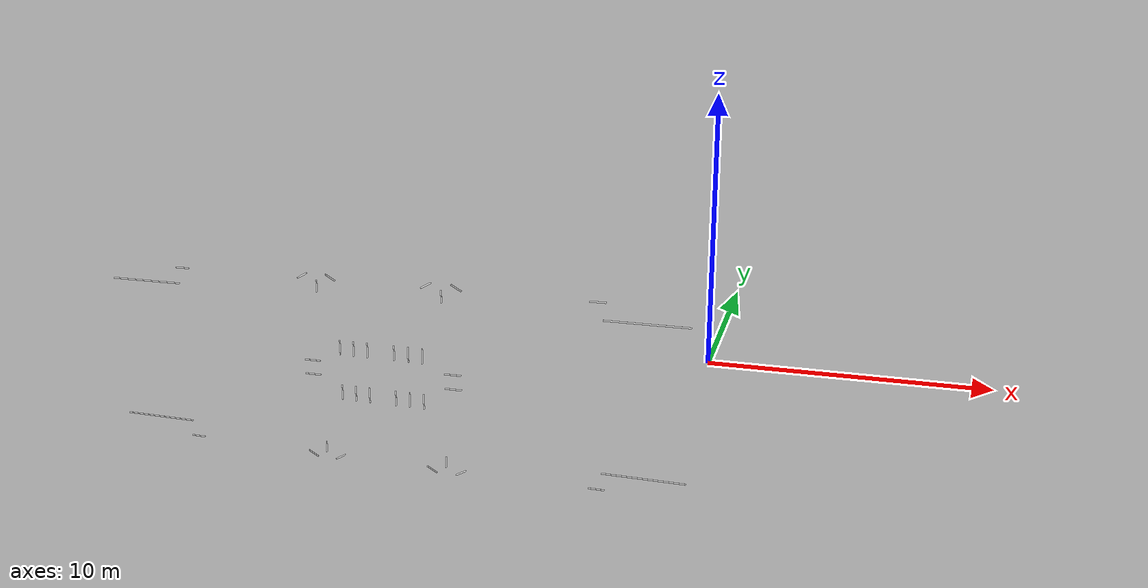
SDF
<?xml version="1.0" encoding="utf-8"?>
<sdf version="1.5">
  <model name="TapePatterns">
    <pose>0 0 0.00254 0 0 0</pose>
    <static>true</static>
    <link name="All">
      <gravity>1</gravity>
      <self_collide>0</self_collide>
      <pose>-11.2776 -4.572 -3.88230984051777E-14 0 0 0</pose>
      <must_be_base_link>1</must_be_base_link>
      <visual name="All_visual">
        <pose>0 0 0 0 0 0</pose>
        <material>
          <ambient>1 1 1 1</ambient>
          <diffuse>1 1 1 1</diffuse>
          <emissive>0.2 0.2 0.2 1</emissive>
        </material>
        <geometry>
          <mesh>
            <scale>1 1 1</scale>
            <uri>model://TapePatterns/meshes/All.STL</uri>
          </mesh>
        </geometry>
      </visual>
    </link>
  </model>
</sdf>
